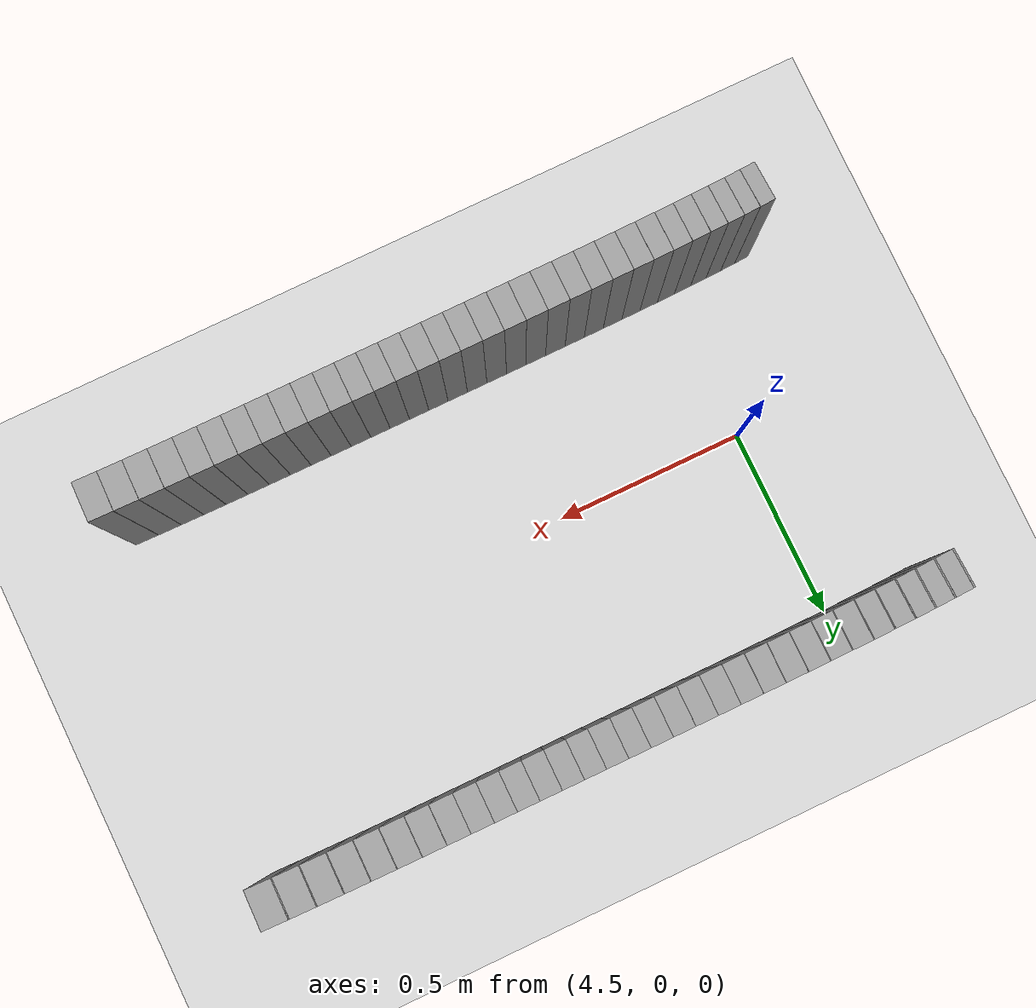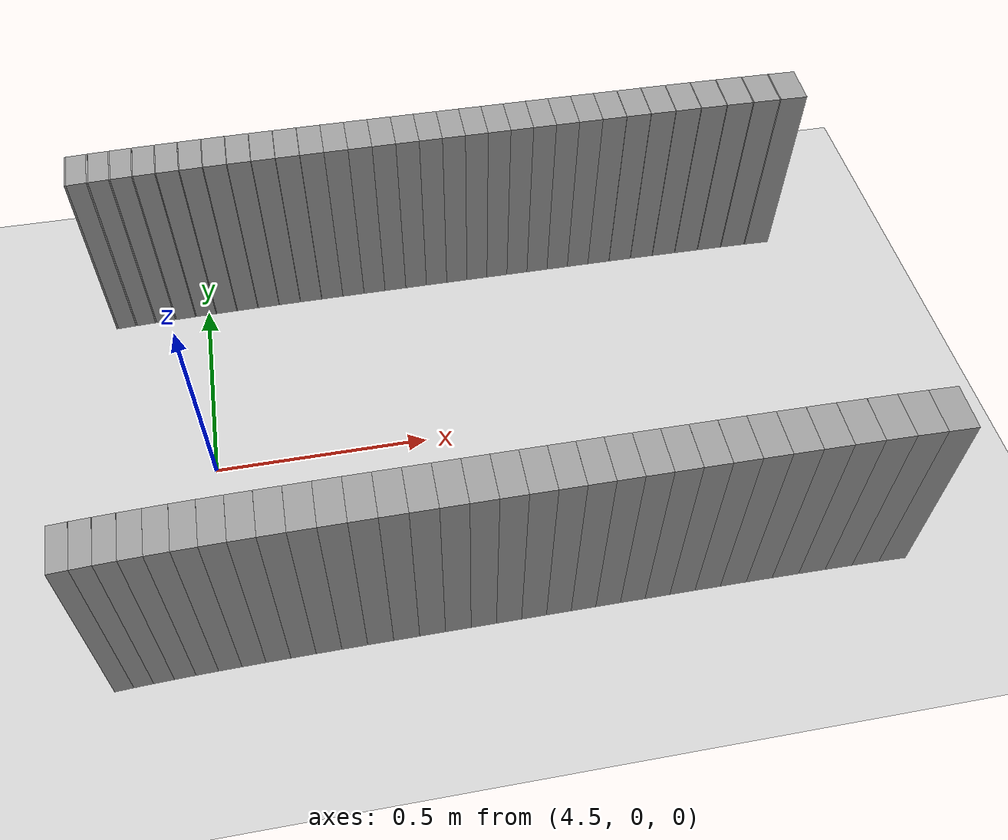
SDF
<sdf version="1.6">
 <world name="default">
  <include><uri>model://ground_plane</uri></include>
  <include><uri>model://sun</uri></include>
  <model name="wall_50_outward">
   <static>true</static>
   <link name="link">
    <collision name="collision">
     <geometry><box><size>0.004160988222173302 0.1 0.5</size></box></geometry>
    </collision>
    <visual name="visual">
     <geometry><box><size>0.004160988222173302 0.1 0.5</size></box></geometry>
     <material>
      <script><uri>file://media/materials/scripts/gazebo.material</uri><name>Gazebo/Gray</name></script>
     </material>
    </visual>
   </link>
   <pose>4.261049518774885 0.5391889793724918 0.25 0 0 0.04823901020475315</pose>
  </model>
  <model name="wall_51_outward">
   <static>true</static>
   <link name="link">
    <collision name="collision">
     <geometry><box><size>0.04496903528980866 0.1 0.5</size></box></geometry>
    </collision>
    <visual name="visual">
     <geometry><box><size>0.04496903528980866 0.1 0.5</size></box></geometry>
     <material>
      <script><uri>file://media/materials/scripts/gazebo.material</uri><name>Gazebo/Gray</name></script>
     </material>
    </visual>
   </link>
   <pose>4.28559027162109 0.540280053333434 0.25 0 0 0.04407800997537032</pose>
  </model>
  <model name="wall_52_outward">
   <static>true</static>
   <link name="link">
    <collision name="collision">
     <geometry><box><size>0.003825986914924742 0.1 0.5</size></box></geometry>
    </collision>
    <visual name="visual">
     <geometry><box><size>0.003825986914924742 0.1 0.5</size></box></geometry>
     <material>
      <script><uri>file://media/materials/scripts/gazebo.material</uri><name>Gazebo/Gray</name></script>
     </material>
    </visual>
   </link>
   <pose>4.309964394471084 0.5413477862837727 0.25 0 0 0.04025201372616193</pose>
  </model>
  <model name="wall_53_outward">
   <static>true</static>
   <link name="link">
    <collision name="collision">
     <geometry><box><size>0.04649450497457409 0.1 0.5</size></box></geometry>
    </collision>
    <visual name="visual">
     <geometry><box><size>0.04649450497457409 0.1 0.5</size></box></geometry>
     <material>
      <script><uri>file://media/materials/scripts/gazebo.material</uri><name>Gazebo/Gray</name></script>
     </material>
    </visual>
   </link>
   <pose>4.335107669727092 0.5422713849043005 0.25 0 0 0.03642601747691062</pose>
  </model>
  <model name="wall_54_outward">
   <static>true</static>
   <link name="link">
    <collision name="collision">
     <geometry><box><size>0.0034124546824018083 0.1 0.5</size></box></geometry>
    </collision>
    <visual name="visual">
     <geometry><box><size>0.0034124546824018083 0.1 0.5</size></box></geometry>
     <material>
      <script><uri>file://media/materials/scripts/gazebo.material</uri><name>Gazebo/Gray</name></script>
     </material>
    </visual>
   </link>
   <pose>4.36004479867736 0.5431743208782948 0.25 0 0 0.03301355617153691</pose>
  </model>
  <model name="wall_55_outward">
   <static>true</static>
   <link name="link">
    <collision name="collision">
     <geometry><box><size>0.048052047921690835 0.1 0.5</size></box></geometry>
    </collision>
    <visual name="visual">
     <geometry><box><size>0.048052047921690835 0.1 0.5</size></box></geometry>
     <material>
      <script><uri>file://media/materials/scripts/gazebo.material</uri><name>Gazebo/Gray</name></script>
     </material>
    </visual>
   </link>
   <pose>4.385765594928974 0.5439417320366933 0.25 0 0 0.029601094866198177</pose>
  </model>
  <model name="wall_56_outward">
   <static>true</static>
   <link name="link">
    <collision name="collision">
     <geometry><box><size>0.0029636738585370704 0.1 0.5</size></box></geometry>
    </collision>
    <visual name="visual">
     <geometry><box><size>0.0029636738585370704 0.1 0.5</size></box></geometry>
     <material>
      <script><uri>file://media/materials/scripts/gazebo.material</uri><name>Gazebo/Gray</name></script>
     </material>
    </visual>
   </link>
   <pose>4.411262404799372 0.544692292434356 0.25 0 0 0.02663741666915037</pose>
  </model>
  <model name="wall_57_outward">
   <static>true</static>
   <link name="link">
    <collision name="collision">
     <geometry><box><size>0.049592147010289765 0.1 0.5</size></box></geometry>
    </collision>
    <visual name="visual">
     <geometry><box><size>0.049592147010289765 0.1 0.5</size></box></geometry>
     <material>
      <script><uri>file://media/materials/scripts/gazebo.material</uri><name>Gazebo/Gray</name></script>
     </material>
    </visual>
   </link>
   <pose>4.437532841440445 0.5453187210033699 0.25 0 0 0.023673738472082675</pose>
  </model>
  <model name="wall_58_outward">
   <static>true</static>
   <link name="link">
    <collision name="collision">
     <geometry><box><size>0.002512778108504425 0.1 0.5</size></box></geometry>
    </collision>
    <visual name="visual">
     <geometry><box><size>0.002512778108504425 0.1 0.5</size></box></geometry>
     <material>
      <script><uri>file://media/materials/scripts/gazebo.material</uri><name>Gazebo/Gray</name></script>
     </material>
    </visual>
   </link>
   <pose>4.463578074609272 0.5459322663439703 0.25 0 0 0.021160957719267574</pose>
  </model>
  <model name="wall_59_outward">
   <static>true</static>
   <link name="link">
    <collision name="collision">
     <geometry><box><size>0.05106008059572402 0.1 0.5</size></box></geometry>
    </collision>
    <visual name="visual">
     <geometry><box><size>0.05106008059572402 0.1 0.5</size></box></geometry>
     <material>
      <script><uri>file://media/materials/scripts/gazebo.material</uri><name>Gazebo/Gray</name></script>
     </material>
    </visual>
   </link>
   <pose>4.490359783710474 0.5464349118717504 0.25 0 0 0.018648176966455293</pose>
  </model>
  <model name="wall_60_outward">
   <static>true</static>
   <link name="link">
    <collision name="collision">
     <geometry><box><size>0.0020858333984511094 0.1 0.5</size></box></geometry>
    </collision>
    <visual name="visual">
     <geometry><box><size>0.0020858333984511094 0.1 0.5</size></box></geometry>
     <material>
      <script><uri>file://media/materials/scripts/gazebo.material</uri><name>Gazebo/Gray</name></script>
     </material>
    </visual>
   </link>
   <pose>4.516928158704368 0.546928245341416 0.25 0 0 0.0165623420554848</pose>
  </model>
  <model name="wall_61_outward">
   <static>true</static>
   <link name="link">
    <collision name="collision">
     <geometry><box><size>0.05240768690728273 0.1 0.5</size></box></geometry>
    </collision>
    <visual name="visual">
     <geometry><box><size>0.05240768690728273 0.1 0.5</size></box></geometry>
     <material>
      <script><uri>file://media/materials/scripts/gazebo.material</uri><name>Gazebo/Gray</name></script>
     </material>
    </visual>
   </link>
   <pose>4.544172030106575 0.547324844572272 0.25 0 0 0.014476507144600645</pose>
  </model>
  <model name="wall_62_outward">
   <static>true</static>
   <link name="link">
    <collision name="collision">
     <geometry><box><size>0.0016979175728443977 0.1 0.5</size></box></geometry>
    </collision>
    <visual name="visual">
     <geometry><box><size>0.0016979175728443977 0.1 0.5</size></box></geometry>
     <material>
      <script><uri>file://media/materials/scripts/gazebo.material</uri><name>Gazebo/Gray</name></script>
     </material>
    </visual>
   </link>
   <pose>4.571222017321276 0.5477150196496707 0.25 0 0 0.012778588755944847</pose>
  </model>
  <model name="wall_63_outward">
   <static>true</static>
   <link name="link">
    <collision name="collision">
     <geometry><box><size>0.05358738384704497 0.1 0.5</size></box></geometry>
    </collision>
    <visual name="visual">
     <geometry><box><size>0.05358738384704497 0.1 0.5</size></box></geometry>
     <material>
      <script><uri>file://media/materials/scripts/gazebo.material</uri><name>Gazebo/Gray</name></script>
     </material>
    </visual>
   </link>
   <pose>4.598862953853192 0.5480227538423297 0.25 0 0 0.011080670367254013</pose>
  </model>
  <model name="wall_64_outward">
   <static>true</static>
   <link name="link">
    <collision name="collision">
     <geometry><box><size>0.0013580560709438793 0.1 0.5</size></box></geometry>
    </collision>
    <visual name="visual">
     <geometry><box><size>0.0013580560709438793 0.1 0.5</size></box></geometry>
     <material>
      <script><uri>file://media/materials/scripts/gazebo.material</uri><name>Gazebo/Gray</name></script>
     </material>
    </visual>
   </link>
   <pose>4.626333996853704 0.5483262416584196 0.25 0 0 0.009722613878775732</pose>
  </model>
  <model name="wall_65_outward">
   <static>true</static>
   <link name="link">
    <collision name="collision">
     <geometry><box><size>0.054564795966232135 0.1 0.5</size></box></geometry>
    </collision>
    <visual name="visual">
     <geometry><box><size>0.054564795966232135 0.1 0.5</size></box></geometry>
     <material>
      <script><uri>file://media/materials/scripts/gazebo.material</uri><name>Gazebo/Gray</name></script>
     </material>
    </visual>
   </link>
   <pose>4.6542944363664365 0.5485610460044043 0.25 0 0 0.008364557390470347</pose>
  </model>
  <model name="wall_66_outward">
   <static>true</static>
   <link name="link">
    <collision name="collision">
     <geometry><box><size>0.001068298114175033 0.1 0.5</size></box></geometry>
    </collision>
    <visual name="visual">
     <geometry><box><size>0.001068298114175033 0.1 0.5</size></box></geometry>
     <material>
      <script><uri>file://media/materials/scripts/gazebo.material</uri><name>Gazebo/Gray</name></script>
     </material>
    </visual>
   </link>
   <pose>4.682110014776772 0.5487931457823245 0.25 0 0 0.007296259073098027</pose>
  </model>
  <model name="wall_67_outward">
   <static>true</static>
   <link name="link">
    <collision name="collision">
     <geometry><box><size>0.05531264217772241 0.1 0.5</size></box></geometry>
    </collision>
    <visual name="visual">
     <geometry><box><size>0.05531264217772241 0.1 0.5</size></box></geometry>
     <material>
      <script><uri>file://media/materials/scripts/gazebo.material</uri><name>Gazebo/Gray</name></script>
     </material>
    </visual>
   </link>
   <pose>4.710299934346988 0.5489692844065651 0.25 0 0 0.0062279607557172555</pose>
  </model>
  <model name="wall_68_outward">
   <static>true</static>
   <link name="link">
    <collision name="collision">
     <geometry><box><size>0.0008274686076926217 0.1 0.5</size></box></geometry>
    </collision>
    <visual name="visual">
     <geometry><box><size>0.0008274686076926217 0.1 0.5</size></box></geometry>
     <material>
      <script><uri>file://media/materials/scripts/gazebo.material</uri><name>Gazebo/Gray</name></script>
     </material>
    </visual>
   </link>
   <pose>4.738369447348388 0.5491437601334397 0.25 0 0 0.005400492053550786</pose>
  </model>
  <model name="wall_69_outward">
   <static>true</static>
   <link name="link">
    <collision name="collision">
     <geometry><box><size>0.0558217120700085 0.1 0.5</size></box></geometry>
    </collision>
    <visual name="visual">
     <geometry><box><size>0.0558217120700085 0.1 0.5</size></box></geometry>
     <material>
      <script><uri>file://media/materials/scripts/gazebo.material</uri><name>Gazebo/Gray</name></script>
     </material>
    </visual>
   </link>
   <pose>4.7666937398109335 0.549273631042938 0.25 0 0 0.0045730233514754805</pose>
  </model>
  <model name="wall_70_outward">
   <static>true</static>
   <link name="link">
    <collision name="collision">
     <geometry><box><size>0.0006313394673847532 0.1 0.5</size></box></geometry>
    </collision>
    <visual name="visual">
     <geometry><box><size>0.0006313394673847532 0.1 0.5</size></box></geometry>
     <material>
      <script><uri>file://media/materials/scripts/gazebo.material</uri><name>Gazebo/Gray</name></script>
     </material>
    </visual>
   </link>
   <pose>4.794919971284399 0.549402511861544 0.25 0 0 0.003941683842058649</pose>
  </model>
  <model name="wall_71_outward">
   <static>true</static>
   <link name="link">
    <collision name="collision">
     <geometry><box><size>0.056095502170795404 0.1 0.5</size></box></geometry>
    </collision>
    <visual name="visual">
     <geometry><box><size>0.056095502170795404 0.1 0.5</size></box></geometry>
     <material>
      <script><uri>file://media/materials/scripts/gazebo.material</uri><name>Gazebo/Gray</name></script>
     </material>
    </visual>
   </link>
   <pose>4.823283235972421 0.549496603672888 0.25 0 0 0.003310344332822162</pose>
  </model>
  <model name="wall_72_outward">
   <static>true</static>
   <link name="link">
    <collision name="collision">
     <geometry><box><size>0.056629875849773956 0.1 0.5</size></box></geometry>
    </collision>
    <visual name="visual">
     <geometry><box><size>0.056629875849773956 0.1 0.5</size></box></geometry>
     <material>
      <script><uri>file://media/materials/scripts/gazebo.material</uri><name>Gazebo/Gray</name></script>
     </material>
    </visual>
   </link>
   <pose>4.879645692116516 0.5496564166196906 0.25 0 0 0.002365022488467552</pose>
  </model>
  <model name="wall_73_outward">
   <static>true</static>
   <link name="link">
    <collision name="collision">
     <geometry><box><size>0.05639194378022094 0.1 0.5</size></box></geometry>
    </collision>
    <visual name="visual">
     <geometry><box><size>0.05639194378022094 0.1 0.5</size></box></geometry>
     <material>
      <script><uri>file://media/materials/scripts/gazebo.material</uri><name>Gazebo/Gray</name></script>
     </material>
    </visual>
   </link>
   <pose>4.93615648428667 0.5497699512150207 0.25 0 0 0.0016516264861795936</pose>
  </model>
  <model name="wall_74_outward">
   <static>true</static>
   <link name="link">
    <collision name="collision">
     <geometry><box><size>0.056047155384874654 0.1 0.5</size></box></geometry>
    </collision>
    <visual name="visual">
     <geometry><box><size>0.056047155384874654 0.1 0.5</size></box></geometry>
     <material>
      <script><uri>file://media/materials/scripts/gazebo.material</uri><name>Gazebo/Gray</name></script>
     </material>
    </visual>
   </link>
   <pose>4.99237597748165 0.549848221053227 0.25 0 0 0.001131213598434076</pose>
  </model>
  <model name="wall_75_outward">
   <static>true</static>
   <link name="link">
    <collision name="collision">
     <geometry><box><size>0.05565903092921405 0.1 0.5</size></box></geometry>
    </collision>
    <visual name="visual">
     <geometry><box><size>0.05565903092921405 0.1 0.5</size></box></geometry>
     <material>
      <script><uri>file://media/materials/scripts/gazebo.material</uri><name>Gazebo/Gray</name></script>
     </material>
    </visual>
   </link>
   <pose>5.048229044848142 0.5499008383192185 0.25 0 0 0.0007515985172635755</pose>
  </model>
  <model name="wall_76_outward">
   <static>true</static>
   <link name="link">
    <collision name="collision">
     <geometry><box><size>0.055291198959231624 0.1 0.5</size></box></geometry>
    </collision>
    <visual name="visual">
     <geometry><box><size>0.055291198959231624 0.1 0.5</size></box></geometry>
     <material>
      <script><uri>file://media/materials/scripts/gazebo.material</uri><name>Gazebo/Gray</name></script>
     </material>
    </visual>
   </link>
   <pose>5.103704148943363 0.5499346095329976 0.25 0 0 0.00046497793117601357</pose>
  </model>
  <model name="wall_77_outward">
   <static>true</static>
   <link name="link">
    <collision name="collision">
     <geometry><box><size>0.05500355575093425 0.1 0.5</size></box></geometry>
    </collision>
    <visual name="visual">
     <geometry><box><size>0.05500355575093425 0.1 0.5</size></box></geometry>
     <material>
      <script><uri>file://media/materials/scripts/gazebo.material</uri><name>Gazebo/Gray</name></script>
     </material>
    </visual>
   </link>
   <pose>5.158851522543852 0.5499539552797926 0.25 0 0 0.00023602669237354746</pose>
  </model>
  <model name="wall_78_outward">
   <static>true</static>
   <link name="link">
    <collision name="collision">
     <geometry><box><size>0.05485156350586837 0.1 0.5</size></box></geometry>
    </collision>
    <visual name="visual">
     <geometry><box><size>0.05485156350586837 0.1 0.5</size></box></geometry>
     <material>
      <script><uri>file://media/materials/scripts/gazebo.material</uri><name>Gazebo/Gray</name></script>
     </material>
    </visual>
   </link>
   <pose>5.213779081378724 0.5499616743023595 0.25 0 0 4.477060935989867e-05</pose>
  </model>
  <model name="wall_79_outward">
   <static>true</static>
   <link name="link">
    <collision name="collision">
     <geometry><box><size>0.05490202679794547 0.1 0.5</size></box></geometry>
    </collision>
    <visual name="visual">
     <geometry><box><size>0.05490202679794547 0.1 0.5</size></box></geometry>
     <material>
      <script><uri>file://media/materials/scripts/gazebo.material</uri><name>Gazebo/Gray</name></script>
     </material>
    </visual>
   </link>
   <pose>5.268655876167938 0.5499586122390276 0.25 0 0 -0.00015627591768090332</pose>
  </model>
  <model name="wall_80_outward">
   <static>true</static>
   <link name="link">
    <collision name="collision">
     <geometry><box><size>0.05518070298896388 0.1 0.5</size></box></geometry>
    </collision>
    <visual name="visual">
     <geometry><box><size>0.05518070298896388 0.1 0.5</size></box></geometry>
     <material>
      <script><uri>file://media/materials/scripts/gazebo.material</uri><name>Gazebo/Gray</name></script>
     </material>
    </visual>
   </link>
   <pose>5.323697238652134 0.5499436242861737 0.25 0 0 -0.00038774499960458794</pose>
  </model>
  <model name="wall_81_outward">
   <static>true</static>
   <link name="link">
    <collision name="collision">
     <geometry><box><size>0.05572171809791528 0.1 0.5</size></box></geometry>
    </collision>
    <visual name="visual">
     <geometry><box><size>0.05572171809791528 0.1 0.5</size></box></geometry>
     <material>
      <script><uri>file://media/materials/scripts/gazebo.material</uri><name>Gazebo/Gray</name></script>
     </material>
    </visual>
   </link>
   <pose>5.379148440377975 0.5499135416840706 0.25 0 0 -0.0006957640132947788</pose>
  </model>
  <model name="wall_82_outward">
   <static>true</static>
   <link name="link">
    <collision name="collision">
     <geometry><box><size>0.056518371451084244 0.1 0.5</size></box></geometry>
    </collision>
    <visual name="visual">
     <geometry><box><size>0.056518371451084244 0.1 0.5</size></box></geometry>
     <material>
      <script><uri>file://media/materials/scripts/gazebo.material</uri><name>Gazebo/Gray</name></script>
     </material>
    </visual>
   </link>
   <pose>5.435268460963426 0.5498627566090137 0.25 0 0 -0.0011111608197681528</pose>
  </model>
  <model name="wall_83_outward">
   <static>true</static>
   <link name="link">
    <collision name="collision">
     <geometry><box><size>0.05756508745429598 0.1 0.5</size></box></geometry>
    </collision>
    <visual name="visual">
     <geometry><box><size>0.05756508745429598 0.1 0.5</size></box></geometry>
     <material>
      <script><uri>file://media/materials/scripts/gazebo.material</uri><name>Gazebo/Gray</name></script>
     </material>
    </visual>
   </link>
   <pose>5.492310131730418 0.5497826324679401 0.25 0 0 -0.0016928201791685236</pose>
  </model>
  <model name="wall_84_outward">
   <static>true</static>
   <link name="link">
    <collision name="collision">
     <geometry><box><size>0.05882402602051911 0.1 0.5</size></box></geometry>
    </collision>
    <visual name="visual">
     <geometry><box><size>0.05882402602051911 0.1 0.5</size></box></geometry>
     <material>
      <script><uri>file://media/materials/scripts/gazebo.material</uri><name>Gazebo/Gray</name></script>
     </material>
    </visual>
   </link>
   <pose>5.550504555167615 0.5496603198798904 0.25 0 0 -0.002502005464361616</pose>
  </model>
  <model name="wall_85_outward">
   <static>true</static>
   <link name="link">
    <collision name="collision">
     <geometry><box><size>0.0005591318609673103 0.1 0.5</size></box></geometry>
    </collision>
    <visual name="visual">
     <geometry><box><size>0.0005591318609673103 0.1 0.5</size></box></geometry>
     <material>
      <script><uri>file://media/materials/scripts/gazebo.material</uri><name>Gazebo/Gray</name></script>
     </material>
    </visual>
   </link>
   <pose>5.58019604073611 0.5495858743705135 0.25 0 0 -0.003063929228840497</pose>
  </model>
  <model name="wall_86_outward">
   <static>true</static>
   <link name="link">
    <collision name="collision">
     <geometry><box><size>0.05968975706260224 0.1 0.5</size></box></geometry>
    </collision>
    <visual name="visual">
     <geometry><box><size>0.05968975706260224 0.1 0.5</size></box></geometry>
     <material>
      <script><uri>file://media/materials/scripts/gazebo.material</uri><name>Gazebo/Gray</name></script>
     </material>
    </visual>
   </link>
   <pose>5.610320288005404 0.5494768882191912 0.25 0 0 -0.003623061118694902</pose>
  </model>
  <model name="wall_87_outward">
   <static>true</static>
   <link name="link">
    <collision name="collision">
     <geometry><box><size>0.0007534803124737137 0.1 0.5</size></box></geometry>
    </collision>
    <visual name="visual">
     <geometry><box><size>0.0007534803124737137 0.1 0.5</size></box></geometry>
     <material>
      <script><uri>file://media/materials/scripts/gazebo.material</uri><name>Gazebo/Gray</name></script>
     </material>
    </visual>
   </link>
   <pose>5.640541707204628 0.5493671098230886 0.25 0 0 -0.004376541502498785</pose>
  </model>
  <model name="wall_88_outward">
   <static>true</static>
   <link name="link">
    <collision name="collision">
     <geometry><box><size>0.06101585251345795 0.1 0.5</size></box></geometry>
    </collision>
    <visual name="visual">
     <geometry><box><size>0.06101585251345795 0.1 0.5</size></box></geometry>
     <material>
      <script><uri>file://media/materials/scripts/gazebo.material</uri><name>Gazebo/Gray</name></script>
     </material>
    </visual>
   </link>
   <pose>5.67142596856997 0.5492089553664872 0.25 0 0 -0.005130021886236288</pose>
  </model>
  <model name="wall_89_outward">
   <static>true</static>
   <link name="link">
    <collision name="collision">
     <geometry><box><size>0.001007615372205362 0.1 0.5</size></box></geometry>
    </collision>
    <visual name="visual">
     <geometry><box><size>0.001007615372205362 0.1 0.5</size></box></geometry>
     <material>
      <script><uri>file://media/materials/scripts/gazebo.material</uri><name>Gazebo/Gray</name></script>
     </material>
    </visual>
   </link>
   <pose>5.702437291583898 0.5490493575540545 0.25 0 0 -0.006137637428993169</pose>
  </model>
  <model name="wall_90_outward">
   <static>true</static>
   <link name="link">
    <collision name="collision">
     <geometry><box><size>0.06231904832562631 0.1 0.5</size></box></geometry>
    </collision>
    <visual name="visual">
     <geometry><box><size>0.06231904832562631 0.1 0.5</size></box></geometry>
     <material>
      <script><uri>file://media/materials/scripts/gazebo.material</uri><name>Gazebo/Gray</name></script>
     </material>
    </visual>
   </link>
   <pose>5.734099818527715 0.5488236245964232 0.25 0 0 -0.007145252971653994</pose>
  </model>
  <model name="wall_91_outward">
   <static>true</static>
   <link name="link">
    <collision name="collision">
     <geometry><box><size>0.0013255590476900247 0.1 0.5</size></box></geometry>
    </collision>
    <visual name="visual">
     <geometry><box><size>0.0013255590476900247 0.1 0.5</size></box></geometry>
     <material>
      <script><uri>file://media/materials/scripts/gazebo.material</uri><name>Gazebo/Gray</name></script>
     </material>
    </visual>
   </link>
   <pose>5.7659213030199945 0.5485953695944166 0.25 0 0 -0.008470812407507746</pose>
  </model>
  <model name="wall_92_outward">
   <static>true</static>
   <link name="link">
    <collision name="collision">
     <geometry><box><size>0.06352130205709251 0.1 0.5</size></box></geometry>
    </collision>
    <visual name="visual">
     <geometry><box><size>0.06352130205709251 0.1 0.5</size></box></geometry>
     <material>
      <script><uri>file://media/materials/scripts/gazebo.material</uri><name>Gazebo/Gray</name></script>
     </material>
    </visual>
   </link>
   <pose>5.798343185788564 0.5482786212096693 0.25 0 0 -0.009796371843417803</pose>
  </model>
  <model name="wall_93_outward">
   <static>true</static>
   <link name="link">
    <collision name="collision">
     <geometry><box><size>0.0017295591398149796 0.1 0.5</size></box></geometry>
    </collision>
    <visual name="visual">
     <geometry><box><size>0.0017295591398149796 0.1 0.5</size></box></geometry>
     <material>
      <script><uri>file://media/materials/scripts/gazebo.material</uri><name>Gazebo/Gray</name></script>
     </material>
    </visual>
   </link>
   <pose>5.830967034940718 0.5479575198690987 0.25 0 0 -0.011525931845479922</pose>
  </model>
  <model name="wall_94_outward">
   <static>true</static>
   <link name="link">
    <collision name="collision">
     <geometry><box><size>0.0645474925824169 0.1 0.5</size></box></geometry>
    </collision>
    <visual name="visual">
     <geometry><box><size>0.0645474925824169 0.1 0.5</size></box></geometry>
     <material>
      <script><uri>file://media/materials/scripts/gazebo.material</uri><name>Gazebo/Gray</name></script>
     </material>
    </visual>
   </link>
   <pose>5.864102668023515 0.5475197608465503 0.25 0 0 -0.013255491847637428</pose>
  </model>
  <model name="wall_95_outward">
   <static>true</static>
   <link name="link">
    <collision name="collision">
     <geometry><box><size>0.002226911962321562 0.1 0.5</size></box></geometry>
    </collision>
    <visual name="visual">
     <geometry><box><size>0.002226911962321562 0.1 0.5</size></box></geometry>
     <material>
      <script><uri>file://media/materials/scripts/gazebo.material</uri><name>Gazebo/Gray</name></script>
     </material>
    </visual>
   </link>
   <pose>5.897486901510906 0.5470747307052262 0.25 0 0 -0.015482405650549974</pose>
  </model>
  <model name="wall_96_outward">
   <static>true</static>
   <link name="link">
    <collision name="collision">
     <geometry><box><size>0.06533342972720814 0.1 0.5</size></box></geometry>
    </collision>
    <visual name="visual">
     <geometry><box><size>0.06533342972720814 0.1 0.5</size></box></geometry>
     <material>
      <script><uri>file://media/materials/scripts/gazebo.material</uri><name>Gazebo/Gray</name></script>
     </material>
    </visual>
   </link>
   <pose>5.931261816574307 0.5464790173657365 0.25 0 0 -0.017709319453474415</pose>
  </model>
  <model name="wall_97_outward">
   <static>true</static>
   <link name="link">
    <collision name="collision">
     <geometry><box><size>0.0028349633098475628 0.1 0.5</size></box></geometry>
    </collision>
    <visual name="visual">
     <geometry><box><size>0.0028349633098475628 0.1 0.5</size></box></geometry>
     <material>
      <script><uri>file://media/materials/scripts/gazebo.material</uri><name>Gazebo/Gray</name></script>
     </material>
    </visual>
   </link>
   <pose>5.965340591633128 0.5458714232138777 0.25 0 0 -0.02054428656079888</pose>
  </model>
  <model name="wall_98_outward">
   <static>true</static>
   <link name="link">
    <collision name="collision">
     <geometry><box><size>0.06583014050182487 0.1 0.5</size></box></geometry>
    </collision>
    <visual name="visual">
     <geometry><box><size>0.06583014050182487 0.1 0.5</size></box></geometry>
     <material>
      <script><uri>file://media/materials/scripts/gazebo.material</uri><name>Gazebo/Gray</name></script>
     </material>
    </visual>
   </link>
   <pose>5.999663849306668 0.5450728444370389 0.25 0 0 -0.02337925366807837</pose>
  </model>
  <model name="wall_61_inward">
   <static>true</static>
   <link name="link">
    <collision name="collision">
     <geometry><box><size>0.039257686773886545 0.1 0.5</size></box></geometry>
    </collision>
    <visual name="visual">
     <geometry><box><size>0.039257686773886545 0.1 0.5</size></box></geometry>
     <material>
      <script><uri>file://media/materials/scripts/gazebo.material</uri><name>Gazebo/Gray</name></script>
     </material>
    </visual>
   </link>
   <pose>4.289667920949812 -0.46067582618719394 0.25 0 0 0.052400010434109155</pose>
  </model>
  <model name="wall_62_inward">
   <static>true</static>
   <link name="link">
    <collision name="collision">
     <geometry><box><size>0.04097551570883395 0.1 0.5</size></box></geometry>
    </collision>
    <visual name="visual">
     <geometry><box><size>0.04097551570883395 0.1 0.5</size></box></geometry>
     <material>
      <script><uri>file://media/materials/scripts/gazebo.material</uri><name>Gazebo/Gray</name></script>
     </material>
    </visual>
   </link>
   <pose>4.3297376809866535 -0.45874497801501124 0.25 0 0 0.04407800997537144</pose>
  </model>
  <model name="wall_63_inward">
   <static>true</static>
   <link name="link">
    <collision name="collision">
     <geometry><box><size>0.04287526023994408 0.1 0.5</size></box></geometry>
    </collision>
    <visual name="visual">
     <geometry><box><size>0.04287526023994408 0.1 0.5</size></box></geometry>
     <material>
      <script><uri>file://media/materials/scripts/gazebo.material</uri><name>Gazebo/Gray</name></script>
     </material>
    </visual>
   </link>
   <pose>4.371628948910092 -0.45706149599941254 0.25 0 0 0.03642601747690792</pose>
  </model>
  <model name="wall_64_inward">
   <static>true</static>
   <link name="link">
    <collision name="collision">
     <geometry><box><size>0.04486396720895427 0.1 0.5</size></box></geometry>
    </collision>
    <visual name="visual">
     <geometry><box><size>0.04486396720895427 0.1 0.5</size></box></geometry>
     <material>
      <script><uri>file://media/materials/scripts/gazebo.material</uri><name>Gazebo/Gray</name></script>
     </material>
    </visual>
   </link>
   <pose>4.415474514883602 -0.4556168668774866 0.25 0 0 0.029601094866200443</pose>
  </model>
  <model name="wall_65_inward">
   <static>true</static>
   <link name="link">
    <collision name="collision">
     <geometry><box><size>0.046853910552482135 0.1 0.5</size></box></geometry>
    </collision>
    <visual name="visual">
     <geometry><box><size>0.046853910552482135 0.1 0.5</size></box></geometry>
     <material>
      <script><uri>file://media/materials/scripts/gazebo.material</uri><name>Gazebo/Gray</name></script>
     </material>
    </visual>
   </link>
   <pose>4.461317062287696 -0.4543984007594123 0.25 0 0 0.023673738472082435</pose>
  </model>
  <model name="wall_66_inward">
   <static>true</static>
   <link name="link">
    <collision name="collision">
     <geometry><box><size>0.04876076860707499 0.1 0.5</size></box></geometry>
    </collision>
    <visual name="visual">
     <geometry><box><size>0.04876076860707499 0.1 0.5</size></box></geometry>
     <material>
      <script><uri>file://media/materials/scripts/gazebo.material</uri><name>Gazebo/Gray</name></script>
     </material>
    </visual>
   </link>
   <pose>4.509113598332252 -0.45338922557939393 0.25 0 0 0.018648176966454114</pose>
  </model>
  <model name="wall_67_inward">
   <static>true</static>
   <link name="link">
    <collision name="collision">
     <geometry><box><size>0.05051580792914119 0.1 0.5</size></box></geometry>
    </collision>
    <visual name="visual">
     <geometry><box><size>0.05051580792914119 0.1 0.5</size></box></geometry>
     <material>
      <script><uri>file://media/materials/scripts/gazebo.material</uri><name>Gazebo/Gray</name></script>
     </material>
    </visual>
   </link>
   <pose>4.558745000935092 -0.4525689687530482 0.25 0 0 0.014476507144600479</pose>
  </model>
  <model name="wall_68_inward">
   <static>true</static>
   <link name="link">
    <collision name="collision">
     <geometry><box><size>0.05205939517526079 0.1 0.5</size></box></geometry>
    </collision>
    <visual name="visual">
     <geometry><box><size>0.05205939517526079 0.1 0.5</size></box></geometry>
     <material>
      <script><uri>file://media/materials/scripts/gazebo.material</uri><name>Gazebo/Gray</name></script>
     </material>
    </visual>
   </link>
   <pose>4.6100283579302745 -0.4519149147005457 0.25 0 0 0.011080670367252524</pose>
  </model>
  <model name="wall_69_inward">
   <static>true</static>
   <link name="link">
    <collision name="collision">
     <geometry><box><size>0.05335161794269504 0.1 0.5</size></box></geometry>
    </collision>
    <visual name="visual">
     <geometry><box><size>0.05335161794269504 0.1 0.5</size></box></geometry>
     <material>
      <script><uri>file://media/materials/scripts/gazebo.material</uri><name>Gazebo/Gray</name></script>
     </material>
    </visual>
   </link>
   <pose>4.662731333334136 -0.4514033653708503 0.25 0 0 0.008364557390469693</pose>
  </model>
  <model name="wall_70_inward">
   <static>true</static>
   <link name="link">
    <collision name="collision">
     <geometry><box><size>0.05436475837030151 0.1 0.5</size></box></geometry>
    </collision>
    <visual name="visual">
     <geometry><box><size>0.05436475837030151 0.1 0.5</size></box></geometry>
     <material>
      <script><uri>file://media/materials/scripts/gazebo.material</uri><name>Gazebo/Gray</name></script>
     </material>
    </visual>
   </link>
   <pose>4.71658806113215 -0.451010946941271 0.25 0 0 0.0062279607557178375</pose>
  </model>
  <model name="wall_71_inward">
   <static>true</static>
   <link name="link">
    <collision name="collision">
     <geometry><box><size>0.05509230782796073 0.1 0.5</size></box></geometry>
    </collision>
    <visual name="visual">
     <geometry><box><size>0.05509230782796073 0.1 0.5</size></box></geometry>
     <material>
      <script><uri>file://media/materials/scripts/gazebo.material</uri><name>Gazebo/Gray</name></script>
     </material>
    </visual>
   </link>
   <pose>4.771315779035227 -0.4507156884788146 0.25 0 0 0.0045730233514748005</pose>
  </model>
  <model name="wall_72_inward">
   <static>true</static>
   <link name="link">
    <collision name="collision">
     <geometry><box><size>0.055542507311256026 0.1 0.5</size></box></geometry>
    </collision>
    <visual name="visual">
     <geometry><box><size>0.055542507311256026 0.1 0.5</size></box></geometry>
     <material>
      <script><uri>file://media/materials/scripts/gazebo.material</uri><name>Gazebo/Gray</name></script>
     </material>
    </visual>
   </link>
   <pose>4.826632746411448 -0.4504977874685289 0.25 0 0 0.003310344332823524</pose>
  </model>
  <model name="wall_73_inward">
   <static>true</static>
   <link name="link">
    <collision name="collision">
     <geometry><box><size>0.055739985021665224 0.1 0.5</size></box></geometry>
    </collision>
    <visual name="visual">
     <geometry><box><size>0.055739985021665224 0.1 0.5</size></box></geometry>
     <material>
      <script><uri>file://media/materials/scripts/gazebo.material</uri><name>Gazebo/Gray</name></script>
     </material>
    </visual>
   </link>
   <pose>4.8822737627330675 -0.45034005300257735 0.25 0 0 0.002361044152155771</pose>
  </model>
  <model name="wall_74_inward">
   <static>true</static>
   <link name="link">
    <collision name="collision">
     <geometry><box><size>0.05572835388299764 0.1 0.5</size></box></geometry>
    </collision>
    <visual name="visual">
     <geometry><box><size>0.05572835388299764 0.1 0.5</size></box></geometry>
     <material>
      <script><uri>file://media/materials/scripts/gazebo.material</uri><name>Gazebo/Gray</name></script>
     </material>
    </visual>
   </link>
   <pose>4.938007816602729 -0.45022829215210347 0.25 0 0 0.0016493812003210162</pose>
  </model>
  <model name="wall_75_inward">
   <static>true</static>
   <link name="link">
    <collision name="collision">
     <geometry><box><size>0.05556286297111432 0.1 0.5</size></box></geometry>
    </collision>
    <visual name="visual">
     <geometry><box><size>0.05556286297111432 0.1 0.5</size></box></geometry>
     <material>
      <script><uri>file://media/materials/scripts/gazebo.material</uri><name>Gazebo/Gray</name></script>
     </material>
    </visual>
   </link>
   <pose>4.993653369390748 -0.45015094022383406 0.25 0 0 0.0011300103882432358</pose>
  </model>
  <model name="wall_76_inward">
   <static>true</static>
   <link name="link">
    <collision name="collision">
     <geometry><box><size>0.05530315150917034 0.1 0.5</size></box></geometry>
    </collision>
    <visual name="visual">
     <geometry><box><size>0.05530315150917034 0.1 0.5</size></box></geometry>
     <material>
      <script><uri>file://media/materials/scripts/gazebo.material</uri><name>Gazebo/Gray</name></script>
     </material>
    </visual>
   </link>
   <pose>5.049086351096727 -0.450098781888662 0.25 0 0 0.0007509531395332913</pose>
  </model>
  <model name="wall_77_inward">
   <static>true</static>
   <link name="link">
    <collision name="collision">
     <geometry><box><size>0.05501923488235078 0.1 0.5</size></box></geometry>
    </collision>
    <visual name="visual">
     <geometry><box><size>0.05501923488235078 0.1 0.5</size></box></geometry>
     <material>
      <script><uri>file://media/materials/scripts/gazebo.material</uri><name>Gazebo/Gray</name></script>
     </material>
    </visual>
   </link>
   <pose>5.104247533526592 -0.45006523568727874 0.25 0 0 0.0004646071940529644</pose>
  </model>
  <model name="wall_78_inward">
   <static>true</static>
   <link name="link">
    <collision name="collision">
     <geometry><box><size>0.05478414571845763 0.1 0.5</size></box></geometry>
    </collision>
    <visual name="visual">
     <geometry><box><size>0.05478414571845763 0.1 0.5</size></box></geometry>
     <material>
      <script><uri>file://media/materials/scripts/gazebo.material</uri><name>Gazebo/Gray</name></script>
     </material>
    </visual>
   </link>
   <pose>5.159149220096436 -0.4500459957799051 0.25 0 0 0.0002357887173277148</pose>
  </model>
  <model name="wall_79_inward">
   <static>true</static>
   <link name="link">
    <collision name="collision">
     <geometry><box><size>0.05465790897539763 0.1 0.5</size></box></geometry>
    </collision>
    <visual name="visual">
     <geometry><box><size>0.05465790897539763 0.1 0.5</size></box></geometry>
     <material>
      <script><uri>file://media/materials/scripts/gazebo.material</uri><name>Gazebo/Gray</name></script>
     </material>
    </visual>
   </link>
   <pose>5.213870246654729 -0.45003831805711336 0.25 0 0 4.4604016160128345e-05</pose>
  </model>
  <model name="wall_80_inward">
   <static>true</static>
   <link name="link">
    <collision name="collision">
     <geometry><box><size>0.05469334681878166 0.1 0.5</size></box></geometry>
    </collision>
    <visual name="visual">
     <geometry><box><size>0.05469334681878166 0.1 0.5</size></box></geometry>
     <material>
      <script><uri>file://media/materials/scripts/gazebo.material</uri><name>Gazebo/Gray</name></script>
     </material>
    </visual>
   </link>
   <pose>5.268545874189913 -0.45004137773658626 0.25 0 0 -0.00015646000350662577</pose>
  </model>
  <model name="wall_81_inward">
   <static>true</static>
   <link name="link">
    <collision name="collision">
     <geometry><box><size>0.054930006514400616 0.1 0.5</size></box></geometry>
    </collision>
    <visual name="visual">
     <geometry><box><size>0.054930006514400616 0.1 0.5</size></box></geometry>
     <material>
      <script><uri>file://media/materials/scripts/gazebo.material</uri><name>Gazebo/Gray</name></script>
     </material>
    </visual>
   </link>
   <pose>5.3233575484545685 -0.4500563124847974 0.25 0 0 -0.0003879878614483986</pose>
  </model>
  <model name="wall_82_inward">
   <static>true</static>
   <link name="link">
    <collision name="collision">
     <geometry><box><size>0.055386632567685404 0.1 0.5</size></box></geometry>
    </collision>
    <visual name="visual">
     <geometry><box><size>0.055386632567685404 0.1 0.5</size></box></geometry>
     <material>
      <script><uri>file://media/materials/scripts/gazebo.material</uri><name>Gazebo/Gray</name></script>
     </material>
    </visual>
   </link>
   <pose>5.3785158592171864 -0.4500862483859118 0.25 0 0 -0.0006961901876675354</pose>
  </model>
  <model name="wall_83_inward">
   <static>true</static>
   <link name="link">
    <collision name="collision">
     <geometry><box><size>0.05606097815500862 0.1 0.5</size></box></geometry>
    </collision>
    <visual name="visual">
     <geometry><box><size>0.05606097815500862 0.1 0.5</size></box></geometry>
     <material>
      <script><uri>file://media/materials/scripts/gazebo.material</uri><name>Gazebo/Gray</name></script>
     </material>
    </visual>
   </link>
   <pose>5.434239640539187 -0.45013669600383677 0.25 0 0 -0.0011119253309461942</pose>
  </model>
  <model name="wall_84_inward">
   <static>true</static>
   <link name="link">
    <collision name="collision">
     <geometry><box><size>0.05692568557584796 0.1 0.5</size></box></geometry>
    </collision>
    <visual name="visual">
     <geometry><box><size>0.05692568557584796 0.1 0.5</size></box></geometry>
     <material>
      <script><uri>file://media/materials/scripts/gazebo.material</uri><name>Gazebo/Gray</name></script>
     </material>
    </visual>
   </link>
   <pose>5.490732914223356 -0.450216088182948 0.25 0 0 -0.0016942930866549644</pose>
  </model>
  <model name="wall_85_inward">
   <static>true</static>
   <link name="link">
    <collision name="collision">
     <geometry><box><size>0.05793658189047743 0.1 0.5</size></box></geometry>
    </collision>
    <visual name="visual">
     <geometry><box><size>0.05793658189047743 0.1 0.5</size></box></geometry>
     <material>
      <script><uri>file://media/materials/scripts/gazebo.material</uri><name>Gazebo/Gray</name></script>
     </material>
    </visual>
   </link>
   <pose>5.5481639162297745 -0.45033687217982477 0.25 0 0 -0.0025047973384947375</pose>
  </model>
  <model name="wall_86_inward">
   <static>true</static>
   <link name="link">
    <collision name="collision">
     <geometry><box><size>0.059033450825156625 0.1 0.5</size></box></geometry>
    </collision>
    <visual name="visual">
     <geometry><box><size>0.059033450825156625 0.1 0.5</size></box></geometry>
     <material>
      <script><uri>file://media/materials/scripts/gazebo.material</uri><name>Gazebo/Gray</name></script>
     </material>
    </visual>
   </link>
   <pose>5.606648647987473 -0.4505163724682443 0.25 0 0 -0.003623061118696037</pose>
  </model>
  <model name="wall_87_inward">
   <static>true</static>
   <link name="link">
    <collision name="collision">
     <geometry><box><size>0.06013530430850113 0.1 0.5</size></box></geometry>
    </collision>
    <visual name="visual">
     <geometry><box><size>0.06013530430850113 0.1 0.5</size></box></geometry>
     <material>
      <script><uri>file://media/materials/scripts/gazebo.material</uri><name>Gazebo/Gray</name></script>
     </material>
    </visual>
   </link>
   <pose>5.666232436181599 -0.45077756017153725 0.25 0 0 -0.005130021886236019</pose>
  </model>
  <model name="wall_88_inward">
   <static>true</static>
   <link name="link">
    <collision name="collision">
     <geometry><box><size>0.061152460277596764 0.1 0.5</size></box></geometry>
    </collision>
    <visual name="visual">
     <geometry><box><size>0.061152460277596764 0.1 0.5</size></box></geometry>
     <material>
      <script><uri>file://media/materials/scripts/gazebo.material</uri><name>Gazebo/Gray</name></script>
     </material>
    </visual>
   </link>
   <pose>5.726875142302552 -0.4511502802488376 0.25 0 0 -0.007145252971654141</pose>
  </model>
  <model name="wall_89_inward">
   <static>true</static>
   <link name="link">
    <collision name="collision">
     <geometry><box><size>0.061993741087615926 0.1 0.5</size></box></geometry>
    </collision>
    <visual name="visual">
     <geometry><box><size>0.061993741087615926 0.1 0.5</size></box></geometry>
     <material>
      <script><uri>file://media/materials/scripts/gazebo.material</uri><name>Gazebo/Gray</name></script>
     </material>
    </visual>
   </link>
   <pose>5.7884459751033575 -0.45167240530199404 0.25 0 0 -0.009796371843418002</pose>
  </model>
  <model name="wall_90_inward">
   <static>true</static>
   <link name="link">
    <collision name="collision">
     <geometry><box><size>0.06256925297702265 0.1 0.5</size></box></geometry>
    </collision>
    <visual name="visual">
     <geometry><box><size>0.06256925297702265 0.1 0.5</size></box></geometry>
     <material>
      <script><uri>file://media/materials/scripts/gazebo.material</uri><name>Gazebo/Gray</name></script>
     </material>
    </visual>
   </link>
   <pose>5.850723236339432 -0.4523907382822383 0.25 0 0 -0.013255491847636055</pose>
  </model>
  <model name="wall_91_inward">
   <static>true</static>
   <link name="link">
    <collision name="collision">
     <geometry><box><size>0.06280248363400835 0.1 0.5</size></box></geometry>
    </collision>
    <visual name="visual">
     <geometry><box><size>0.06280248363400835 0.1 0.5</size></box></geometry>
     <material>
      <script><uri>file://media/materials/scripts/gazebo.material</uri><name>Gazebo/Gray</name></script>
     </material>
    </visual>
   </link>
   <pose>5.913401432304642 -0.4533614848055292 0.25 0 0 -0.017709319453474107</pose>
  </model>
  <model name="wall_92_inward">
   <static>true</static>
   <link name="link">
    <collision name="collision">
     <geometry><box><size>0.06262687270044189 0.1 0.5</size></box></geometry>
    </collision>
    <visual name="visual">
     <geometry><box><size>0.06262687270044189 0.1 0.5</size></box></geometry>
     <material>
      <script><uri>file://media/materials/scripts/gazebo.material</uri><name>Gazebo/Gray</name></script>
     </material>
    </visual>
   </link>
   <pose>5.976102629163899 -0.4546495684433245 0.25 0 0 -0.023379253668078772</pose>
  </model>
 </world>
</sdf>
